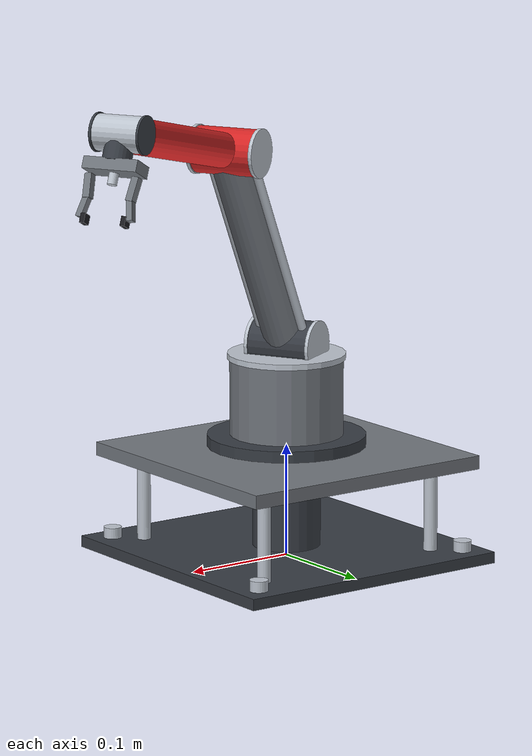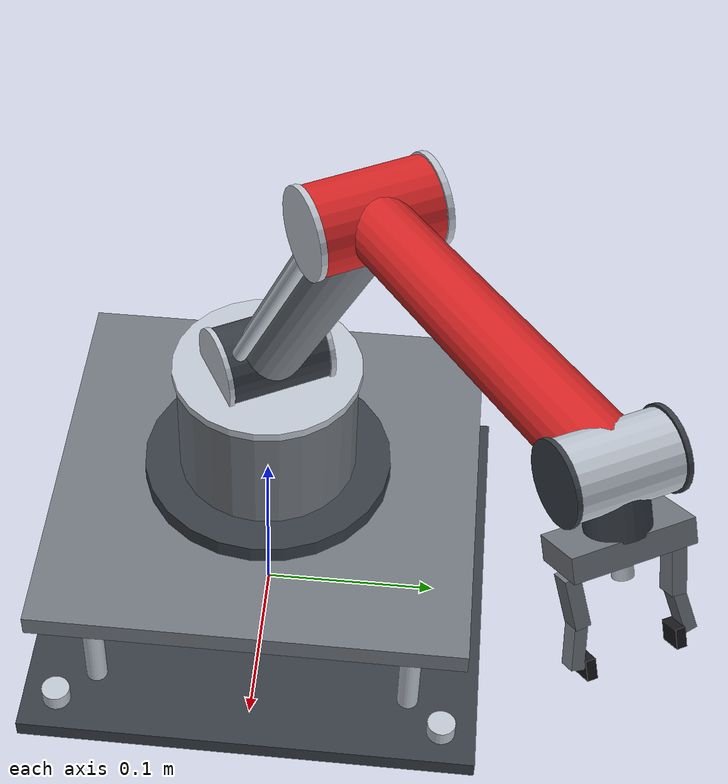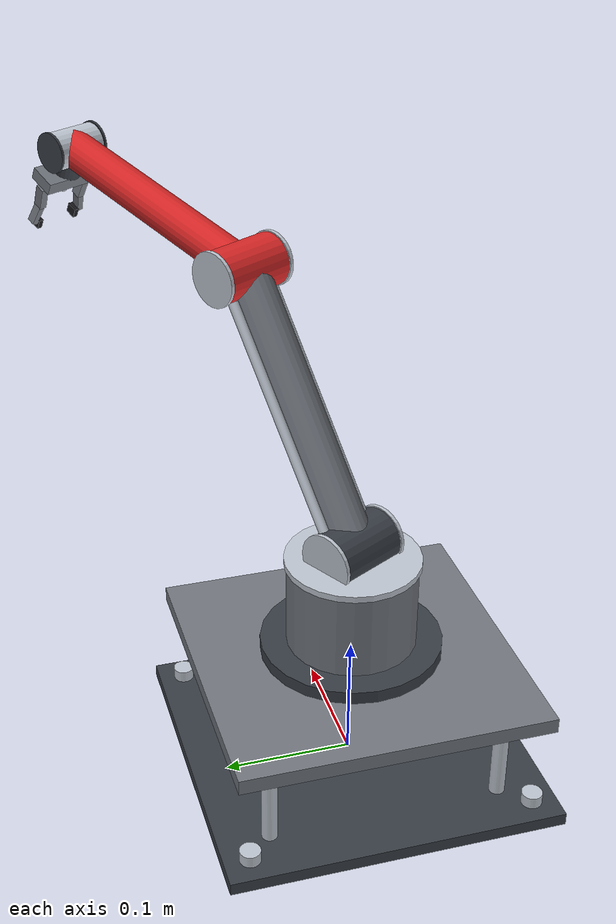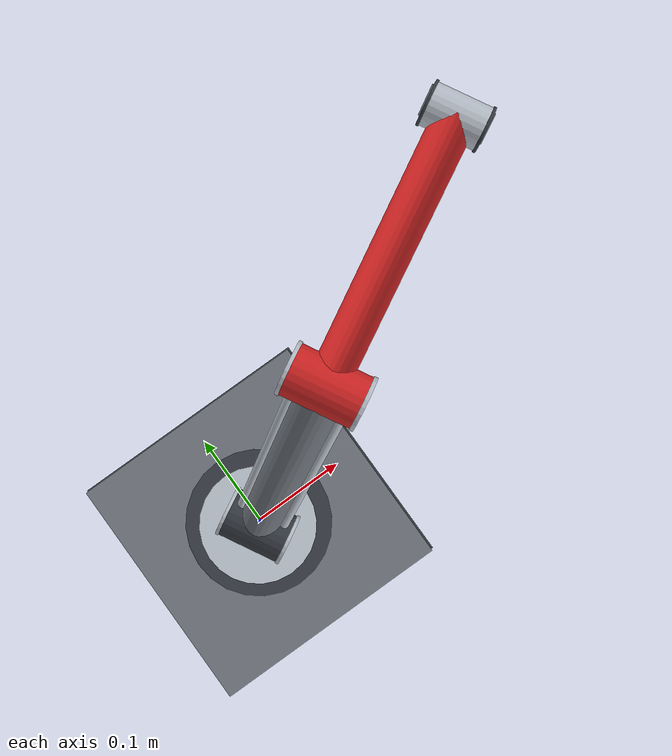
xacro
<?xml version="1.0"?>
<robot xmlns:xacro="http://www.ros.org/wiki/xacro" name="my_robot">

  <!-- MATERIALES -->
  <material name="industrial_grey"><color rgba="0.45 0.47 0.50 1.0"/></material>
  <material name="metal_dark"><color rgba="0.22 0.24 0.27 1.0"/></material>
  <material name="accent_red"><color rgba="0.85 0.15 0.15 1.0"/></material>
  <material name="chrome_details"><color rgba="0.75 0.78 0.82 1.0"/></material>
  <material name="gripper_rubber"><color rgba="0.10 0.10 0.12 1.0"/></material>

  <!-- BASE ESTRUCTURAL -->
  <link name="base_link">
    <visual><origin xyz="0 0 0.005"/><geometry><box size="0.26 0.26 0.01"/></geometry><material name="metal_dark"/></visual>
    <visual><origin xyz="0.11 0.11 0.012"/><geometry><cylinder radius="0.008" length="0.015"/></geometry><material name="chrome_details"/></visual>
    <visual><origin xyz="-0.11 0.11 0.012"/><geometry><cylinder radius="0.008" length="0.015"/></geometry><material name="chrome_details"/></visual>
    <visual><origin xyz="0.11 -0.11 0.012"/><geometry><cylinder radius="0.008" length="0.015"/></geometry><material name="chrome_details"/></visual>
    <visual><origin xyz="-0.11 -0.11 0.012"/><geometry><cylinder radius="0.008" length="0.015"/></geometry><material name="chrome_details"/></visual>
    <collision><geometry><box size="0.26 0.26 0.02"/></geometry></collision>
    <inertial><mass value="5.0"/><origin xyz="0 0 0"/><inertia ixx="0.01" ixy="0" ixz="0" iyy="0.01" iyz="0" izz="0.01"/></inertial>
  </link>

  <joint name="joint_base_structure" type="fixed">
    <parent link="base_link"/>
    <child link="base_top_link"/>
    <origin xyz="0 0 0.09" rpy="0 0 0"/>
  </joint>

  <link name="base_top_link">
    <visual><origin xyz="0 0 0"/><geometry><box size="0.24 0.24 0.012"/></geometry><material name="industrial_grey"/></visual>
    <visual><origin xyz="0.09 0.09 -0.045"/><geometry><cylinder radius="0.006" length="0.078"/></geometry><material name="chrome_details"/></visual>
    <visual><origin xyz="-0.09 0.09 -0.045"/><geometry><cylinder radius="0.006" length="0.078"/></geometry><material name="chrome_details"/></visual>
    <visual><origin xyz="0.09 -0.09 -0.045"/><geometry><cylinder radius="0.006" length="0.078"/></geometry><material name="chrome_details"/></visual>
    <visual><origin xyz="-0.09 -0.09 -0.045"/><geometry><cylinder radius="0.006" length="0.078"/></geometry><material name="chrome_details"/></visual>
    <visual><origin xyz="0 0 -0.045"/><geometry><cylinder radius="0.030" length="0.075"/></geometry><material name="metal_dark"/></visual>
    <collision><geometry><box size="0.24 0.24 0.012"/></geometry></collision>
    <inertial><mass value="2.0"/><origin xyz="0 0 0"/><inertia ixx="0.005" ixy="0" ixz="0" iyy="0.005" iyz="0" izz="0.005"/></inertial>
  </link>

  <!-- JOINT 1: CINTURA GIRO -->
  <joint name="joint_1" type="revolute">
    <parent link="base_top_link"/>
    <child link="link_1"/>
    <origin xyz="0 0 0.01" rpy="0 0 0.5"/>
    <axis xyz="0 0 1"/>
    <limit lower="-3.14" upper="3.14" effort="100.0" velocity="1.0"/>
    <dynamics damping="5.0" friction="2.0"/>
  </joint>

  <link name="link_1">
    <visual><origin xyz="0 0 0.005"/><geometry><cylinder radius="0.07" length="0.01"/></geometry><material name="metal_dark"/></visual>
    <visual><origin xyz="0 0 0.045"/><geometry><cylinder radius="0.05" length="0.07"/></geometry><material name="industrial_grey"/></visual>
    <visual><origin xyz="0 0 0.08"/><geometry><cylinder radius="0.052" length="0.005"/></geometry><material name="chrome_details"/></visual>
    <collision><geometry><cylinder radius="0.07" length="0.1"/></geometry></collision>
    <inertial><mass value="1.5"/><origin xyz="0 0 0.05"/><inertia ixx="0.003" ixy="0" ixz="0" iyy="0.003" iyz="0" izz="0.003"/></inertial>
  </link>

  <!-- CODO 1 (BASE/HOMBRO): CILÍNDRICO MÁS PEQUEÑO (radius 0.022) -->
  <joint name="joint_2" type="revolute">
    <parent link="link_1"/>
    <child link="link_2"/>
    <origin xyz="0 0 0.09" rpy="0 0.55 0"/>
    <axis xyz="0 1 0"/>
    <limit lower="-1.57" upper="1.57" effort="100.0" velocity="1.0"/>
    <dynamics damping="10.0" friction="5.0"/>
  </joint>

  <link name="link_2">
    <!-- Codo 1 cilíndrico estilizado -->
    <visual><origin xyz="0 0 0" rpy="1.57 0 0"/><geometry><cylinder radius="0.022" length="0.055"/></geometry><material name="metal_dark"/></visual>
    <visual><origin xyz="0 0.029 0" rpy="1.57 0 0"/><geometry><cylinder radius="0.023" length="0.003"/></geometry><material name="chrome_details"/></visual>
    <visual><origin xyz="0 -0.029 0" rpy="1.57 0 0"/><geometry><cylinder radius="0.023" length="0.003"/></geometry><material name="chrome_details"/></visual>

    <!-- Primer palo cilíndrico -->
    <visual><origin xyz="0 0 0.11"/><geometry><cylinder radius="0.018" length="0.22"/></geometry><material name="industrial_grey"/></visual>
    <visual><origin xyz="0 0.020 0.11"/><geometry><cylinder radius="0.004" length="0.18"/></geometry><material name="chrome_details"/></visual>
    <visual><origin xyz="0 -0.020 0.11"/><geometry><cylinder radius="0.004" length="0.18"/></geometry><material name="chrome_details"/></visual>
    <collision><geometry><cylinder radius="0.025" length="0.23"/></geometry></collision>
    <inertial><mass value="1.0"/><origin xyz="0 0 0.11"/><inertia ixx="0.004" ixy="0" ixz="0" iyy="0.004" iyz="0" izz="0.004"/></inertial>
  </link>

  <!-- CODO 2 (CENTRAL ROJO): CILÍNDRICO MÁS PEQUEÑO (radius 0.020) -->
  <joint name="joint_3" type="revolute">
    <parent link="link_2"/>
    <child link="link_3"/>
    <origin xyz="0 0 0.22" rpy="0 0.80 0"/>
    <axis xyz="0 1 0"/>
    <limit lower="-3.14" upper="3.14" effort="100.0" velocity="1.0"/>
    <dynamics damping="8.0" friction="4.0"/>
  </joint>

  <link name="link_3">
    <!-- Codo 2 rojo compacto -->
    <visual><origin xyz="0 0 0" rpy="1.57 0 0"/><geometry><cylinder radius="0.020" length="0.055"/></geometry><material name="accent_red"/></visual>
    <visual><origin xyz="0 0.029 0" rpy="1.57 0 0"/><geometry><cylinder radius="0.021" length="0.003"/></geometry><material name="chrome_details"/></visual>
    <visual><origin xyz="0 -0.029 0" rpy="1.57 0 0"/><geometry><cylinder radius="0.021" length="0.003"/></geometry><material name="chrome_details"/></visual>

    <!-- Segundo palo cilíndrico rojo -->
    <visual><origin xyz="0 0 0.10"/><geometry><cylinder radius="0.015" length="0.20"/></geometry><material name="accent_red"/></visual>
    <collision><geometry><cylinder radius="0.018" length="0.20"/></geometry></collision>
    <inertial><mass value="0.8"/><origin xyz="0 0 0.10"/><inertia ixx="0.002" ixy="0" ixz="0" iyy="0.002" iyz="0" izz="0.002"/></inertial>
  </link>

  <!-- CODO 3 (MINI CODO EN LA MANO) + MUÑECA APUNTANDO A 90° HACIA ABAJO -->
  <joint name="joint_4" type="revolute">
    <parent link="link_3"/>
    <child link="effector_link"/>
    <origin xyz="0 0 0.20" rpy="0 1.35 0"/>
    <axis xyz="0 1 0"/>
    <limit lower="-3.14" upper="3.14" effort="5.0" velocity="1.0"/>
    <dynamics damping="0.5" friction="0.2"/>
  </joint>

  <link name="effector_link">
    <!-- Mini Codo 3 cilíndrico metálico en la muñeca -->
    <visual><origin xyz="0 0 0" rpy="1.57 0 0"/><geometry><cylinder radius="0.015" length="0.040"/></geometry><material name="chrome_details"/></visual>
    <visual><origin xyz="0 0.021 0" rpy="1.57 0 0"/><geometry><cylinder radius="0.016" length="0.002"/></geometry><material name="metal_dark"/></visual>
    <visual><origin xyz="0 -0.021 0" rpy="1.57 0 0"/><geometry><cylinder radius="0.016" length="0.002"/></geometry><material name="metal_dark"/></visual>

    <!-- Base y Actuador Piston de la mano -->
    <visual><origin xyz="0 0 0.015"/><geometry><cylinder radius="0.012" length="0.018"/></geometry><material name="metal_dark"/></visual>
    <visual><origin xyz="0 0 0.028"/><geometry><box size="0.022 0.048 0.010"/></geometry><material name="industrial_grey"/></visual>
    <visual><origin xyz="0 0 0.035"/><geometry><cylinder radius="0.004" length="0.015"/></geometry><material name="chrome_details"/></visual>

    <!-- DEDOS APUNTANDO DIRECCIÓN PISO (VERTICAL HACIA ABAJO) -->
    <visual><origin xyz="0 0.020 0.045" rpy="0.10 0 0"/><geometry><box size="0.008 0.006 0.020"/></geometry><material name="industrial_grey"/></visual>
    <visual><origin xyz="0 0.021 0.062" rpy="-0.20 0 0"/><geometry><box size="0.007 0.005 0.018"/></geometry><material name="industrial_grey"/></visual>
    <visual><origin xyz="0 0.018 0.072"/><geometry><box size="0.009 0.004 0.008"/></geometry><material name="gripper_rubber"/></visual>

    <visual><origin xyz="0 -0.020 0.045" rpy="-0.10 0 0"/><geometry><box size="0.008 0.006 0.020"/></geometry><material name="industrial_grey"/></visual>
    <visual><origin xyz="0 -0.021 0.062" rpy="0.20 0 0"/><geometry><box size="0.007 0.005 0.018"/></geometry><material name="industrial_grey"/></visual>
    <visual><origin xyz="0 -0.018 0.072"/><geometry><box size="0.009 0.004 0.008"/></geometry><material name="gripper_rubber"/></visual>

    <collision><geometry><box size="0.06 0.06 0.08"/></geometry></collision>
    <inertial><mass value="0.20"/><origin xyz="0 0 0.04"/><inertia ixx="0.001" ixy="0" ixz="0" iyy="0.001" iyz="0" izz="0.001"/></inertial>
  </link>

  <!-- GAZEBO PBR MATERIALS -->
  <gazebo reference="base_link"><visual><material><ambient>0.22 0.24 0.27 1</ambient><diffuse>0.22 0.24 0.27 1</diffuse><metalness>0.7</metalness><roughness>0.3</roughness></material></visual></gazebo>
  <gazebo reference="base_top_link"><visual><material><ambient>0.45 0.47 0.5 1</ambient><diffuse>0.45 0.47 0.5 1</diffuse><metalness>0.5</metalness><roughness>0.4</roughness></material></visual></gazebo>
  <gazebo reference="link_1"><visual><material><ambient>0.45 0.47 0.5 1</ambient><diffuse>0.45 0.47 0.5 1</diffuse><metalness>0.6</metalness><roughness>0.3</roughness></material></visual></gazebo>
  <gazebo reference="link_2"><visual><material><ambient>0.45 0.47 0.5 1</ambient><diffuse>0.45 0.47 0.5 1</diffuse><metalness>0.5</metalness><roughness>0.4</roughness></material></visual></gazebo>
  <gazebo reference="link_3"><visual><material><ambient>0.85 0.15 0.15 1</ambient><diffuse>0.85 0.15 0.15 1</diffuse><metalness>0.3</metalness><roughness>0.2</roughness></material></visual></gazebo>
  <gazebo reference="effector_link"><visual><material><ambient>0.22 0.24 0.27 1</ambient><diffuse>0.22 0.24 0.27 1</diffuse><metalness>0.8</metalness><roughness>0.2</roughness></material></visual></gazebo>
</robot>
